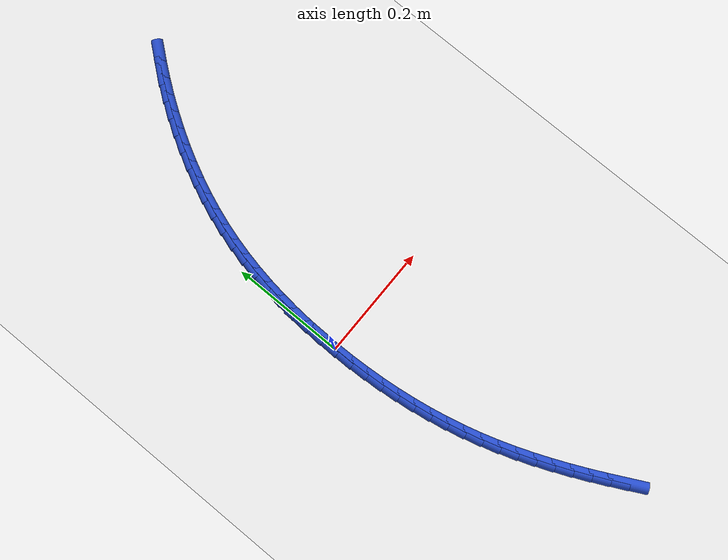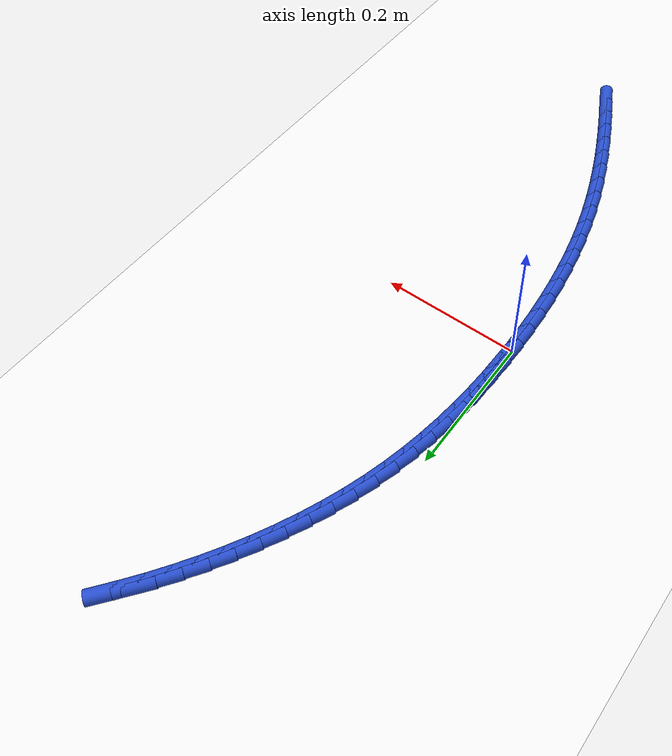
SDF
<sdf version="1.6">
 <world name="default">
  <model name="ground_plane">
   <static>1</static>
   <link name="link">
    <collision name="collision">
     <geometry><plane><normal>0 0 1</normal><size>100 100</size></plane></geometry>
     <surface><friction><ode><mu>100</mu><mu2>50</mu2></ode></friction></surface>
    </collision>
    <visual name="visual">
     <cast_shadows>0</cast_shadows>
     <geometry><plane><normal>0 0 1</normal><size>100 100</size></plane></geometry>
     <material>
      <script><uri>file://media/materials/scripts/gazebo.material</uri><name>Gazebo/WhiteGlow</name></script>
     </material>
    </visual>
   </link>
  </model>
  <model name="line">
   <link name="link_0">
    <pose>1.1709383462843448e-17 4.163336342344337e-17 0.01 0 1.57 1.5636640697530726</pose>
    <collision name="collision">
     <geometry><cylinder><radius>0.01</radius><length>0.08</length></cylinder></geometry>
    </collision>
    <visual name="visual">
     <material>
      <script><name>Gazebo/Blue</name><uri>file://media/materials/scripts/gazebo.material</uri></script>
     </material>
     <geometry><cylinder><radius>0.01</radius><length>0.08</length></cylinder></geometry>
    </visual>
   </link>
   <link name="link_1">
    <pose>0.00021605386986257264 0.030291982621384793 0.01 0 1.57 1.5359491459673433</pose>
    <collision name="collision">
     <geometry><cylinder><radius>0.01</radius><length>0.08</length></cylinder></geometry>
    </collision>
    <visual name="visual">
     <material>
      <script><name>Gazebo/Blue</name><uri>file://media/materials/scripts/gazebo.material</uri></script>
     </material>
     <geometry><cylinder><radius>0.01</radius><length>0.08</length></cylinder></geometry>
    </visual>
   </link>
   <link name="link_2">
    <pose>0.0012710043663280038 0.06055335295052828 0.01 0 1.57 1.506263772295638</pose>
    <collision name="collision">
     <geometry><cylinder><radius>0.01</radius><length>0.08</length></cylinder></geometry>
    </collision>
    <visual name="visual">
     <material>
      <script><name>Gazebo/Blue</name><uri>file://media/materials/scripts/gazebo.material</uri></script>
     </material>
     <geometry><cylinder><radius>0.01</radius><length>0.08</length></cylinder></geometry>
    </visual>
   </link>
   <link name="link_3">
    <pose>0.0032218751019634393 0.09074217620428113 0.01 0 1.57 1.474540158930334</pose>
    <collision name="collision">
     <geometry><cylinder><radius>0.01</radius><length>0.08</length></cylinder></geometry>
    </collision>
    <visual name="visual">
     <material>
      <script><name>Gazebo/Blue</name><uri>file://media/materials/scripts/gazebo.material</uri></script>
     </material>
     <geometry><cylinder><radius>0.01</radius><length>0.08</length></cylinder></geometry>
    </visual>
   </link>
   <link name="link_4">
    <pose>0.006125689689336 0.12081651759949373 0.01 0 1.57 1.4407176925384437</pose>
    <collision name="collision">
     <geometry><cylinder><radius>0.01</radius><length>0.08</length></cylinder></geometry>
    </collision>
    <visual name="visual">
     <material>
      <script><name>Gazebo/Blue</name><uri>file://media/materials/scripts/gazebo.material</uri></script>
     </material>
     <geometry><cylinder><radius>0.01</radius><length>0.08</length></cylinder></geometry>
    </visual>
   </link>
   <link name="link_5">
    <pose>0.010039471741012811 0.1507344423530167 0.01 0 1.57 1.4047471201541903</pose>
    <collision name="collision">
     <geometry><cylinder><radius>0.01</radius><length>0.08</length></cylinder></geometry>
    </collision>
    <visual name="visual">
     <material>
      <script><name>Gazebo/Blue</name><uri>file://media/materials/scripts/gazebo.material</uri></script>
     </material>
     <geometry><cylinder><radius>0.01</radius><length>0.08</length></cylinder></geometry>
    </visual>
   </link>
   <link name="link_6">
    <pose>0.015020244869561012 0.18045401568170052 0.01 0 1.57 1.366595375959885</pose>
    <collision name="collision">
     <geometry><cylinder><radius>0.01</radius><length>0.08</length></cylinder></geometry>
    </collision>
    <visual name="visual">
     <material>
      <script><name>Gazebo/Blue</name><uri>file://media/materials/scripts/gazebo.material</uri></script>
     </material>
     <geometry><cylinder><radius>0.01</radius><length>0.08</length></cylinder></geometry>
    </visual>
   </link>
   <link name="link_7">
    <pose>0.021125032687547708 0.2099333028023957 0.01 0 1.57 1.326250966430491</pose>
    <collision name="collision">
     <geometry><cylinder><radius>0.01</radius><length>0.08</length></cylinder></geometry>
    </collision>
    <visual name="visual">
     <material>
      <script><name>Gazebo/Blue</name><uri>file://media/materials/scripts/gazebo.material</uri></script>
     </material>
     <geometry><cylinder><radius>0.01</radius><length>0.08</length></cylinder></geometry>
    </visual>
   </link>
   <link name="link_8">
    <pose>0.028410858807540046 0.23913036893195272 0.01 0 1.57 1.2837508417973633</pose>
    <collision name="collision">
     <geometry><cylinder><radius>0.01</radius><length>0.08</length></cylinder></geometry>
    </collision>
    <visual name="visual">
     <material>
      <script><name>Gazebo/Blue</name><uri>file://media/materials/scripts/gazebo.material</uri></script>
     </material>
     <geometry><cylinder><radius>0.01</radius><length>0.08</length></cylinder></geometry>
    </visual>
   </link>
   <link name="link_9">
    <pose>0.03693411065836092 0.26800336926790747 0.01 0 1.57 1.2405349048784968</pose>
    <collision name="collision">
     <geometry><cylinder><radius>0.01</radius><length>0.08</length></cylinder></geometry>
    </collision>
    <visual name="visual">
     <material>
      <script><name>Gazebo/Blue</name><uri>file://media/materials/scripts/gazebo.material</uri></script>
     </material>
     <geometry><cylinder><radius>0.01</radius><length>0.08</length></cylinder></geometry>
    </visual>
   </link>
   <link name="link_10">
    <pose>0.04670887624633902 0.29651644176208003 0.01 0 1.57 1.1988532899110953</pose>
    <collision name="collision">
     <geometry><cylinder><radius>0.01</radius><length>0.08</length></cylinder></geometry>
    </collision>
    <visual name="visual">
     <material>
      <script><name>Gazebo/Blue</name><uri>file://media/materials/scripts/gazebo.material</uri></script>
     </material>
     <geometry><cylinder><radius>0.01</radius><length>0.08</length></cylinder></geometry>
    </visual>
   </link>
   <link name="link_11">
    <pose>0.057681188571026186 0.3246433499441205 0.01 0 1.57 1.1588626958872574</pose>
    <collision name="collision">
     <geometry><cylinder><radius>0.01</radius><length>0.08</length></cylinder></geometry>
    </collision>
    <visual name="visual">
     <material>
      <script><name>Gazebo/Blue</name><uri>file://media/materials/scripts/gazebo.material</uri></script>
     </material>
     <geometry><cylinder><radius>0.01</radius><length>0.08</length></cylinder></geometry>
    </visual>
   </link>
   <link name="link_12">
    <pose>0.069790925307557 0.3523587279416999 0.01 0 1.57 1.120498247382104</pose>
    <collision name="collision">
     <geometry><cylinder><radius>0.01</radius><length>0.08</length></cylinder></geometry>
    </collision>
    <visual name="visual">
     <material>
      <script><name>Gazebo/Blue</name><uri>file://media/materials/scripts/gazebo.material</uri></script>
     </material>
     <geometry><cylinder><radius>0.01</radius><length>0.08</length></cylinder></geometry>
    </visual>
   </link>
   <link name="link_13">
    <pose>0.08297796413106598 0.37963720988248995 0.01 0 1.57 1.0836816882748765</pose>
    <collision name="collision">
     <geometry><cylinder><radius>0.01</radius><length>0.08</length></cylinder></geometry>
    </collision>
    <visual name="visual">
     <material>
      <script><name>Gazebo/Blue</name><uri>file://media/materials/scripts/gazebo.material</uri></script>
     </material>
     <geometry><cylinder><radius>0.01</radius><length>0.08</length></cylinder></geometry>
    </visual>
   </link>
   <link name="link_14">
    <pose>0.09718218271668772 0.4064534298941617 0.01 0 1.57 1.048324733414023</pose>
    <collision name="collision">
     <geometry><cylinder><radius>0.01</radius><length>0.08</length></cylinder></geometry>
    </collision>
    <visual name="visual">
     <material>
      <script><name>Gazebo/Blue</name><uri>file://media/materials/scripts/gazebo.material</uri></script>
     </material>
     <geometry><cylinder><radius>0.01</radius><length>0.08</length></cylinder></geometry>
    </visual>
   </link>
   <link name="link_15">
    <pose>0.11234345873955673 0.4327820221043867 0.01 0 1.57 1.0143318400632366</pose>
    <collision name="collision">
     <geometry><cylinder><radius>0.01</radius><length>0.08</length></cylinder></geometry>
    </collision>
    <visual name="visual">
     <material>
      <script><name>Gazebo/Blue</name><uri>file://media/materials/scripts/gazebo.material</uri></script>
     </material>
     <geometry><cylinder><radius>0.01</radius><length>0.08</length></cylinder></geometry>
    </visual>
   </link>
   <link name="link_16">
    <pose>0.12840166987480764 0.4585976206408361 0.01 0 1.57 0.981602411229596</pose>
    <collision name="collision">
     <geometry><cylinder><radius>0.01</radius><length>0.08</length></cylinder></geometry>
    </collision>
    <visual name="visual">
     <material>
      <script><name>Gazebo/Blue</name><uri>file://media/materials/scripts/gazebo.material</uri></script>
     </material>
     <geometry><cylinder><radius>0.01</radius><length>0.08</length></cylinder></geometry>
    </visual>
   </link>
   <link name="link_17">
    <pose>0.14529669379757496 0.4838748596311812 0.01 0 1.57 0.9500324685238439</pose>
    <collision name="collision">
     <geometry><cylinder><radius>0.01</radius><length>0.08</length></cylinder></geometry>
    </collision>
    <visual name="visual">
     <material>
      <script><name>Gazebo/Blue</name><uri>file://media/materials/scripts/gazebo.material</uri></script>
     </material>
     <geometry><cylinder><radius>0.01</radius><length>0.08</length></cylinder></geometry>
    </visual>
   </link>
   <link name="link_18">
    <pose>0.1629684081829933 0.5085883732030936 0.01 0 1.57 0.9195158449689439</pose>
    <collision name="collision">
     <geometry><cylinder><radius>0.01</radius><length>0.08</length></cylinder></geometry>
    </collision>
    <visual name="visual">
     <material>
      <script><name>Gazebo/Blue</name><uri>file://media/materials/scripts/gazebo.material</uri></script>
     </material>
     <geometry><cylinder><radius>0.01</radius><length>0.08</length></cylinder></geometry>
    </visual>
   </link>
   <link name="link_19">
    <pose>0.18135669070619712 0.5327127954842444 0.01 0 1.57 0.8899449515929984</pose>
    <collision name="collision">
     <geometry><cylinder><radius>0.01</radius><length>0.08</length></cylinder></geometry>
    </collision>
    <visual name="visual">
     <material>
      <script><name>Gazebo/Blue</name><uri>file://media/materials/scripts/gazebo.material</uri></script>
     </material>
     <geometry><cylinder><radius>0.01</radius><length>0.08</length></cylinder></geometry>
    </visual>
   </link>
   <link name="link_223">
    <pose>0.12892008624140663 -0.49028519712572427 0.01 0 1.57 -1.1011078091738333</pose>
    <collision name="collision">
     <geometry><cylinder><radius>0.01</radius><length>0.08</length></cylinder></geometry>
    </collision>
    <visual name="visual">
     <material>
      <script><name>Gazebo/Blue</name><uri>file://media/materials/scripts/gazebo.material</uri></script>
     </material>
     <geometry><cylinder><radius>0.01</radius><length>0.08</length></cylinder></geometry>
    </visual>
   </link>
   <link name="link_224">
    <pose>0.11520861706614947 -0.4632714684184897 0.01 0 1.57 -1.1178542507356382</pose>
    <collision name="collision">
     <geometry><cylinder><radius>0.01</radius><length>0.08</length></cylinder></geometry>
    </collision>
    <visual name="visual">
     <material>
      <script><name>Gazebo/Blue</name><uri>file://media/materials/scripts/gazebo.material</uri></script>
     </material>
     <geometry><cylinder><radius>0.01</radius><length>0.08</length></cylinder></geometry>
    </visual>
   </link>
   <link name="link_225">
    <pose>0.10197078436030531 -0.4360716808452432 0.01 0 1.57 -1.1371255293232092</pose>
    <collision name="collision">
     <geometry><cylinder><radius>0.01</radius><length>0.08</length></cylinder></geometry>
    </collision>
    <visual name="visual">
     <material>
      <script><name>Gazebo/Blue</name><uri>file://media/materials/scripts/gazebo.material</uri></script>
     </material>
     <geometry><cylinder><radius>0.01</radius><length>0.08</length></cylinder></geometry>
    </visual>
   </link>
   <link name="link_226">
    <pose>0.0892815042303597 -0.4086692554881079 0.01 0 1.57 -1.1589529582910167</pose>
    <collision name="collision">
     <geometry><cylinder><radius>0.01</radius><length>0.08</length></cylinder></geometry>
    </collision>
    <visual name="visual">
     <material>
      <script><name>Gazebo/Blue</name><uri>file://media/materials/scripts/gazebo.material</uri></script>
     </material>
     <geometry><cylinder><radius>0.01</radius><length>0.08</length></cylinder></geometry>
    </visual>
   </link>
   <link name="link_227">
    <pose>0.0772156927827983 -0.3810476134292073 0.01 0 1.57 -1.1833634847562022</pose>
    <collision name="collision">
     <geometry><cylinder><radius>0.01</radius><length>0.08</length></cylinder></geometry>
    </collision>
    <visual name="visual">
     <material>
      <script><name>Gazebo/Blue</name><uri>file://media/materials/scripts/gazebo.material</uri></script>
     </material>
     <geometry><cylinder><radius>0.01</radius><length>0.08</length></cylinder></geometry>
    </visual>
   </link>
   <link name="link_228">
    <pose>0.0658482661241068 -0.3531901757506647 0.01 0 1.57 -1.2103753501660162</pose>
    <collision name="collision">
     <geometry><cylinder><radius>0.01</radius><length>0.08</length></cylinder></geometry>
    </collision>
    <visual name="visual">
     <material>
      <script><name>Gazebo/Blue</name><uri>file://media/materials/scripts/gazebo.material</uri></script>
     </material>
     <geometry><cylinder><radius>0.01</radius><length>0.08</length></cylinder></geometry>
    </visual>
   </link>
   <link name="link_229">
    <pose>0.05525414036077082 -0.32508036353460346 0.01 0 1.57 -1.2399931039689684</pose>
    <collision name="collision">
     <geometry><cylinder><radius>0.01</radius><length>0.08</length></cylinder></geometry>
    </collision>
    <visual name="visual">
     <material>
      <script><name>Gazebo/Blue</name><uri>file://media/materials/scripts/gazebo.material</uri></script>
     </material>
     <geometry><cylinder><radius>0.01</radius><length>0.08</length></cylinder></geometry>
    </visual>
   </link>
   <link name="link_230">
    <pose>0.04550823159927578 -0.29670159786314615 0.01 0 1.57 -1.2722020563016925</pose>
    <collision name="collision">
     <geometry><cylinder><radius>0.01</radius><length>0.08</length></cylinder></geometry>
    </collision>
    <visual name="visual">
     <material>
      <script><name>Gazebo/Blue</name><uri>file://media/materials/scripts/gazebo.material</uri></script>
     </material>
     <geometry><cylinder><radius>0.01</radius><length>0.08</length></cylinder></geometry>
    </visual>
   </link>
   <link name="link_231">
    <pose>0.036685455946107844 -0.26803729981841773 0.01 0 1.57 -1.3067657840099722</pose>
    <collision name="collision">
     <geometry><cylinder><radius>0.01</radius><length>0.08</length></cylinder></geometry>
    </collision>
    <visual name="visual">
     <material>
      <script><name>Gazebo/Blue</name><uri>file://media/materials/scripts/gazebo.material</uri></script>
     </material>
     <geometry><cylinder><radius>0.01</radius><length>0.08</length></cylinder></geometry>
    </visual>
   </link>
   <link name="link_232">
    <pose>0.02885533974727803 -0.2390735538172158 0.01 0 1.57 -1.341464965873201</pose>
    <collision name="collision">
     <geometry><cylinder><radius>0.01</radius><length>0.08</length></cylinder></geometry>
    </collision>
    <visual name="visual">
     <material>
      <script><name>Gazebo/Blue</name><uri>file://media/materials/scripts/gazebo.material</uri></script>
     </material>
     <geometry><cylinder><radius>0.01</radius><length>0.08</length></cylinder></geometry>
    </visual>
   </link>
   <link name="link_233">
    <pose>0.022027818633387288 -0.20982589085738979 0.01 0 1.57 -1.3749502699720781</pose>
    <collision name="collision">
     <geometry><cylinder><radius>0.01</radius><length>0.08</length></cylinder></geometry>
    </collision>
    <visual name="visual">
     <material>
      <script><name>Gazebo/Blue</name><uri>file://media/materials/scripts/gazebo.material</uri></script>
     </material>
     <geometry><cylinder><radius>0.01</radius><length>0.08</length></cylinder></geometry>
    </visual>
   </link>
   <link name="link_234">
    <pose>0.016175789772074636 -0.18032814438699674 0.01 0 1.57 -1.4072227763005165</pose>
    <collision name="collision">
     <geometry><cylinder><radius>0.01</radius><length>0.08</length></cylinder></geometry>
    </collision>
    <visual name="visual">
     <material>
      <script><name>Gazebo/Blue</name><uri>file://media/materials/scripts/gazebo.material</uri></script>
     </material>
     <geometry><cylinder><radius>0.01</radius><length>0.08</length></cylinder></geometry>
    </visual>
   </link>
   <link name="link_235">
    <pose>0.011271593272119759 -0.1506144231231308 0.01 0 1.57 -1.4383123100716804</pose>
    <collision name="collision">
     <geometry><cylinder><radius>0.01</radius><length>0.08</length></cylinder></geometry>
    </collision>
    <visual name="visual">
     <material>
      <script><name>Gazebo/Blue</name><uri>file://media/materials/scripts/gazebo.material</uri></script>
     </material>
     <geometry><cylinder><radius>0.01</radius><length>0.08</length></cylinder></geometry>
    </visual>
   </link>
   <link name="link_236">
    <pose>0.0072875692423023004 -0.12071883578288593 0.01 0 1.57 -1.4682555302243887</pose>
    <collision name="collision">
     <geometry><cylinder><radius>0.01</radius><length>0.08</length></cylinder></geometry>
    </collision>
    <visual name="visual">
     <material>
      <script><name>Gazebo/Blue</name><uri>file://media/materials/scripts/gazebo.material</uri></script>
     </material>
     <geometry><cylinder><radius>0.01</radius><length>0.08</length></cylinder></geometry>
    </visual>
   </link>
   <link name="link_237">
    <pose>0.004196057791401937 -0.09067549108335646 0.01 0 1.57 -1.4970944968299893</pose>
    <collision name="collision">
     <geometry><cylinder><radius>0.01</radius><length>0.08</length></cylinder></geometry>
    </collision>
    <visual name="visual">
     <material>
      <script><name>Gazebo/Blue</name><uri>file://media/materials/scripts/gazebo.material</uri></script>
     </material>
     <geometry><cylinder><radius>0.01</radius><length>0.08</length></cylinder></geometry>
    </visual>
   </link>
   <link name="link_238">
    <pose>0.001969399028198278 -0.06051849774163556 0.01 0 1.57 -1.5248754155719815</pose>
    <collision name="collision">
     <geometry><cylinder><radius>0.01</radius><length>0.08</length></cylinder></geometry>
    </collision>
    <visual name="visual">
     <material>
      <script><name>Gazebo/Blue</name><uri>file://media/materials/scripts/gazebo.material</uri></script>
     </material>
     <geometry><cylinder><radius>0.01</radius><length>0.08</length></cylinder></geometry>
    </visual>
   </link>
   <link name="link_239">
    <pose>0.0005799330614711042 -0.030281964474818956 0.01 0 1.57 -1.551647563250379</pose>
    <collision name="collision">
     <geometry><cylinder><radius>0.01</radius><length>0.08</length></cylinder></geometry>
    </collision>
    <visual name="visual">
     <material>
      <script><name>Gazebo/Blue</name><uri>file://media/materials/scripts/gazebo.material</uri></script>
     </material>
     <geometry><cylinder><radius>0.01</radius><length>0.08</length></cylinder></geometry>
    </visual>
   </link>
   <link name="link_240">
    <pose>1.1275702593849246e-17 -2.0816681711721685e-17 0.01 0 1.57 1.5641302637287473</pose>
    <collision name="collision">
     <geometry><cylinder><radius>0.01</radius><length>0.08</length></cylinder></geometry>
    </collision>
    <visual name="visual">
     <material>
      <script><name>Gazebo/Blue</name><uri>file://media/materials/scripts/gazebo.material</uri></script>
     </material>
     <geometry><cylinder><radius>0.01</radius><length>0.08</length></cylinder></geometry>
    </visual>
   </link>
   <link name="link_241">
    <pose>0.0002019399525646573 0.030293286965727168 0.01 0 1.57 1.5392198663418648</pose>
    <collision name="collision">
     <geometry><cylinder><radius>0.01</radius><length>0.08</length></cylinder></geometry>
    </collision>
    <visual name="visual">
     <material>
      <script><name>Gazebo/Blue</name><uri>file://media/materials/scripts/gazebo.material</uri></script>
     </material>
     <geometry><cylinder><radius>0.01</radius><length>0.08</length></cylinder></geometry>
    </visual>
   </link>
   <link name="link_242">
    <pose>0.001158093027944707 0.06056378770526849 0.01 0 1.57 1.5516767843739263</pose>
    <collision name="collision">
     <geometry><cylinder><radius>0.01</radius><length>0.08</length></cylinder></geometry>
    </collision>
    <visual name="visual">
     <material>
      <script><name>Gazebo/Blue</name><uri>file://media/materials/scripts/gazebo.material</uri></script>
     </material>
     <geometry><cylinder><radius>0.01</radius><length>0.08</length></cylinder></geometry>
    </visual>
   </link>
  </model>
 </world>
</sdf>
